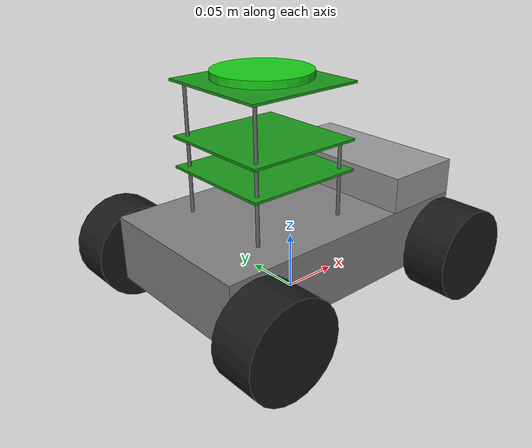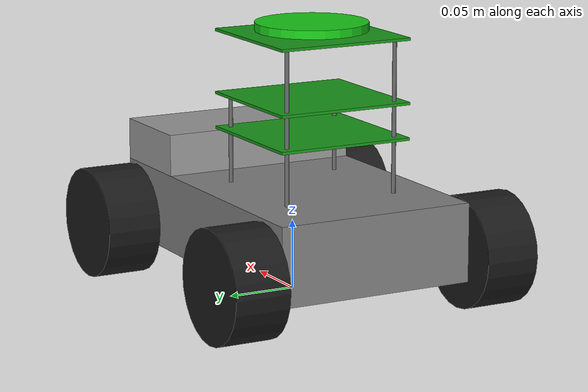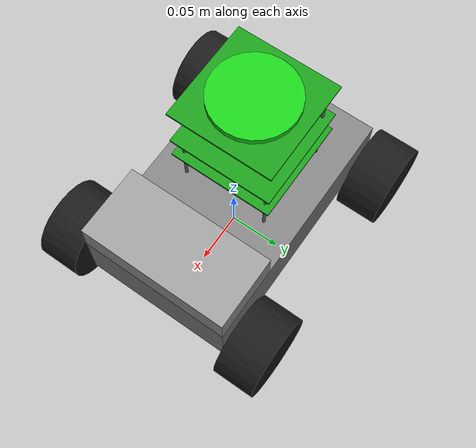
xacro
<?xml version="1.0"?>
<robot xmlns:xacro="http://www.ros.org/wiki/xacro" name="volt_runner_mecanum">

  <!-- ===== includes ===== -->
  <xacro:include filename="$(find volt_runner_description)/urdf/properties/mecanum_properties.urdf.xacro"/>
  <xacro:include filename="$(find volt_runner_description)/urdf/mech/base.urdf.xacro"/>
  <xacro:include filename="$(find volt_runner_description)/urdf/mech/wheel_isaac.urdf.xacro"/>
  <xacro:include filename="$(find volt_runner_description)/urdf/sensors/sender.urdf.xacro"/>

  <!-- ====== 전면 박스 ====== -->
  <xacro:property name="front_box_len" value="0.07"/>
  <xacro:property name="front_box_wid" value="0.145"/>
  <xacro:property name="front_box_hei" value="0.03"/>
  <xacro:property name="front_box_cx"  value="${ base_length/2.0 - front_box_len/2.0 }"/>
  <xacro:property name="front_box_cz"  value="${ base_height/2.0 + front_box_hei/2.0 }"/>

  <joint name="front_box_joint" type="fixed">
    <parent link="base_link"/>
    <child link="front_box_link"/>
    <origin xyz="${front_box_cx} 0 ${front_box_cz}" rpy="0 0 0"/>
  </joint>

  <link name="front_box_link">
    <visual>
      <geometry>
        <box size="${front_box_len} ${front_box_wid} ${front_box_hei}"/>
      </geometry>
      <material name="FrontBoxGrey">
        <color rgba="0.6 0.6 0.6 1"/>
      </material>
    </visual>
    <inertial>
      <mass value="0.1"/>
      <inertia ixx="0.001" ixy="0" ixz="0"
               iyy="0.001" iyz="0" izz="0.001"/>
    </inertial>
  </link>

  <!-- ====== 바디 / 휠 ====== -->
  <xacro:base
    length="${base_length}"
    width="${base_width}"
    height="${base_height}"
    mass="${base_mass}"
    wheel_radius="${wheel_radius}"
    mesh_file=""/>

  <xacro:mecanum_wheel name="front_left"  parent="base_link"
      radius="${wheel_radius}" width="${wheel_width}" mass="${wheel_mass}"
      pos_x="${front_wheel_x}" pos_y="${ wheel_center_y_abs}" pos_z="${base_height/2 - wheel_radius}"/>

  <xacro:mecanum_wheel name="front_right" parent="base_link"
      radius="${wheel_radius}" width="${wheel_width}" mass="${wheel_mass}"
      pos_x="${front_wheel_x}" pos_y="${-wheel_center_y_abs}" pos_z="${base_height/2 - wheel_radius}"/>

  <xacro:mecanum_wheel name="rear_left"   parent="base_link"
      radius="${wheel_radius}" width="${wheel_width}" mass="${wheel_mass}"
      pos_x="${rear_wheel_x}"  pos_y="${ wheel_center_y_abs}" pos_z="${base_height/2 - wheel_radius}"/>

  <xacro:mecanum_wheel name="rear_right"  parent="base_link"
      radius="${wheel_radius}" width="${wheel_width}" mass="${wheel_mass}"
      pos_x="${rear_wheel_x}"  pos_y="${-wheel_center_y_abs}" pos_z="${base_height/2 - wheel_radius}"/>

  <!-- ====== 3층 캐빈 스택 ====== -->
  <xacro:property name="table_len" value="0.10"/>
  <xacro:property name="table_wid" value="0.10"/>
  <xacro:property name="table_thk" value="0.002"/>
  <xacro:property name="leg_rad"   value="0.0015"/>

  <xacro:property name="h1" value="0.040"/>
  <xacro:property name="h2" value="0.025"/>
  <xacro:property name="h3" value="0.045"/>

  <xacro:property name="stack_x" value="${ -base_length/2.0 + 0.042 + table_len/2.0 }"/>
  <xacro:property name="stack_y" value="0.0"/>

  <xacro:macro name="mk_leg" params="name parent xyz len">
    <joint name="${name}_j" type="fixed">
      <parent link="${parent}"/>
      <child  link="${name}_l"/>
      <origin xyz="${xyz}" rpy="0 0 0"/>
    </joint>
    <link name="${name}_l">
      <visual>
        <geometry>
          <cylinder radius="${leg_rad}" length="${len}"/>
        </geometry>
        <material name="LegGray">
          <color rgba="0.4 0.4 0.4 1"/>
        </material>
      </visual>
      <inertial>
        <mass value="0.005"/>
        <inertia ixx="1e-5" ixy="0" ixz="0"
                 iyy="1e-5" iyz="0" izz="1e-5"/>
      </inertial>
    </link>
  </xacro:macro>

  <!-- ===== 1층 캐빈 ===== -->
  <joint name="table_1_joint" type="fixed">
    <parent link="base_link"/>
    <child  link="table_1_link"/>
    <origin xyz="${stack_x} ${stack_y} ${base_height/2.0 + h1 - table_thk/2.0}" rpy="0 0 0"/>
  </joint>

  <link name="table_1_link">
    <visual>
      <geometry>
        <box size="${table_len} ${table_wid} ${table_thk}"/>
      </geometry>
      <material name="TableGreen">
        <color rgba="0.1 0.6 0.1 1"/>
      </material>
    </visual>
    <inertial>
      <mass value="0.05"/>
      <inertia ixx="1e-4" ixy="0" ixz="0"
               iyy="1e-4" iyz="0" izz="1e-4"/>
    </inertial>
  </link>

  <xacro:property name="leg1_len" value="${h1 - table_thk}"/>
  <xacro:property name="leg1_z"   value="${base_height/2.0 + leg1_len/2.0}"/>
  <xacro:property name="ldx"      value="${table_len/2.0 - 0.008}"/>
  <xacro:property name="ldy"      value="${table_wid/2.0 - 0.008}"/>

  <xacro:mk_leg name="leg1_fl" parent="base_link"
                xyz="${stack_x + ldx} ${stack_y + ldy} ${leg1_z}"
                len="${leg1_len}"/>
  <xacro:mk_leg name="leg1_fr" parent="base_link"
                xyz="${stack_x + ldx} ${stack_y - ldy} ${leg1_z}"
                len="${leg1_len}"/>
  <xacro:mk_leg name="leg1_rl" parent="base_link"
                xyz="${stack_x - ldx} ${stack_y + ldy} ${leg1_z}"
                len="${leg1_len}"/>
  <xacro:mk_leg name="leg1_rr" parent="base_link"
                xyz="${stack_x - ldx} ${stack_y - ldy} ${leg1_z}"
                len="${leg1_len}"/>

  <!-- ===== 2층 캐빈 ===== -->
  <joint name="table_2_joint" type="fixed">
    <parent link="table_1_link"/>
    <child  link="table_2_link"/>
    <origin xyz="0 0 ${h2}" rpy="0 0 0"/>
  </joint>

  <link name="table_2_link">
    <visual>
      <geometry>
        <box size="${table_len} ${table_wid} ${table_thk}"/>
      </geometry>
      <material name="TableGreen"/>
    </visual>
    <inertial>
      <mass value="0.05"/>
      <inertia ixx="1e-4" ixy="0" ixz="0"
               iyy="1e-4" iyz="0" izz="1e-4"/>
      </inertial>
  </link>

  <xacro:property name="leg2_len" value="${h2 - table_thk}"/>

  <xacro:mk_leg name="leg2_fl" parent="table_1_link"
                xyz="${ldx} ${ldy} ${h2/2.0}"
                len="${leg2_len}"/>
  <xacro:mk_leg name="leg2_fr" parent="table_1_link"
                xyz="${ldx} ${-ldy} ${h2/2.0}"
                len="${leg2_len}"/>
  <xacro:mk_leg name="leg2_rl" parent="table_1_link"
                xyz="${-ldx} ${ldy} ${h2/2.0}"
                len="${leg2_len}"/>
  <xacro:mk_leg name="leg2_rr" parent="table_1_link"
                xyz="${-ldx} ${-ldy} ${h2/2.0}"
                len="${leg2_len}"/>

  <!-- ===== 3층 캐빈 ===== -->
  <joint name="table_3_joint" type="fixed">
    <parent link="table_2_link"/>
    <child  link="table_3_link"/>
    <origin xyz="0 0 ${h3}" rpy="0 0 0"/>
  </joint>

  <link name="table_3_link">
    <visual>
      <geometry>
        <box size="${table_len} ${table_wid} ${table_thk}"/>
      </geometry>
      <material name="TableGreen"/>
    </visual>
    <inertial>
      <mass value="0.05"/>
      <inertia ixx="1e-4" ixy="0" ixz="0"
               iyy="1e-4" iyz="0" izz="1e-4"/>
    </inertial>
  </link>

  <xacro:property name="leg3_len" value="${h3 - table_thk}"/>

  <xacro:mk_leg name="leg3_rl" parent="table_2_link"
                xyz="${-ldx} ${ldy} ${h3/2.0}"
                len="${leg3_len}"/>
  <xacro:mk_leg name="leg3_rr" parent="table_2_link"
                xyz="${-ldx} ${-ldy} ${h3/2.0}"
                len="${leg3_len}"/>

  <!-- ===== sender: 3층 캐빈 위 ===== -->
  <xacro:sender_sensor
      parent="table_3_link"
      prefix="rear_sender"
      xyz_origin="0 0 ${table_thk/2.0 + 0.005}"
      rpy_origin="0 0 0"/>

</robot>

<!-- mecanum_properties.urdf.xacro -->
<robot xmlns:xacro="http://www.ros.org/wiki/xacro">

  <xacro:property name="base_length" value="0.24"/>
  <xacro:property name="base_width"  value="0.145"/>
  <xacro:property name="base_height" value="0.056"/>
  <xacro:property name="base_mass"   value="6.0"/>

  <xacro:property name="wheel_radius" value="0.04"/>
  <xacro:property name="wheel_width"  value="0.04"/>
  <xacro:property name="wheel_mass"   value="0.3"/>

  <xacro:property name="wheel_gap" value="0.004"/>
  <xacro:property name="base_link_z" value="${wheel_radius + base_height/2.0}"/>
  <xacro:property name="wheel_center_y_abs" value="${base_width/2.0 + wheel_gap + wheel_width/2.0}"/>
  <xacro:property name="front_wheel_x" value="${ base_length/2.0 - 0.02 }"/>
  <xacro:property name="rear_wheel_x"  value="${-base_length/2.0 + 0.02 }"/>
  <xacro:property name="wheel_base" value="${front_wheel_x - rear_wheel_x}"/>

  <xacro:property name="base_mesh_file"  value=""/>
  <xacro:property name="wheel_mesh_file" value=""/>

  <xacro:property name="platform_length" value="0.20"/>
  <xacro:property name="platform_width"  value="0.12"/>
  <xacro:property name="platform_thickness" value="0.01"/>

  <xacro:property name="platform_center_z" value="0.07"/>

  <xacro:property name="laser_frame" value="base_scan"/>
  <xacro:property name="laser_topic" value="/scan"/>
  <xacro:property name="laser_rate"  value="20"/>

</robot>

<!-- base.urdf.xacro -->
<robot xmlns:xacro="http://ros.org/wiki/xacro">
  <!-- base 박스: 총 높이 = 2*wheel_radius 가 되도록 자동 오프셋 -->
  <xacro:macro name="base"
               params="length width height mass wheel_radius mesh_file:=''">

    <link name="base_footprint"/>

    <link name="base_link">
      <visual>
        <origin xyz="0 0 0" rpy="0 0 0"/>
        <geometry>
          <xacro:if value="${mesh_file == ''}">
            <box size="${length} ${width} ${height}"/>
          </xacro:if>
          <xacro:unless value="${mesh_file == ''}">
            <mesh filename="${mesh_file}" scale="1 1 1"/>
          </xacro:unless>
        </geometry>
        <material name="grey"><color rgba="0.5 0.5 0.5 1"/></material>
      </visual>

      <collision>
        <origin xyz="0 0 0" rpy="0 0 0"/>
        <geometry><box size="${length} ${width} ${height}"/></geometry>
      </collision>

      <inertial>
        <origin xyz="0 0 0" rpy="0 0 0"/>
        <mass value="${mass}"/>
        <inertia
          ixx="${(mass/12.0) * (width*width + height*height)}"
          ixy="0" ixz="0"
          iyy="${(mass/12.0) * (length*length + height*height)}"
          iyz="0"
          izz="${(mass/12.0) * (length*length + width*width)}"/>
      </inertial>
    </link>

    <!-- 중심 높이 = 2R - H/2  → 바닥 = 2R - H, 윗면 = 2R -->
    <joint name="base_to_footprint" type="fixed">
      <parent link="base_footprint"/>
      <child  link="base_link"/>
      <origin xyz="0 0 ${2*wheel_radius - height/2.0}" rpy="0 0 0"/>
    </joint>
  </xacro:macro>
</robot>

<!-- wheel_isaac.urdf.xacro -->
<robot xmlns:xacro="http://ros.org/wiki/xacro" xmlns:gz="http://gazebosim.org/schema">
  <xacro:macro name="mecanum_wheel"
               params="name parent:=base_link radius:=0.04 width:=0.04 mass:=0.3
                       pos_x:=0.0 pos_y:=0.0 pos_z:=${radius} mesh_file:=''">

    <link name="${name}_wheel">
      <visual>
        <origin xyz="0 0 0" rpy="1.57079632679 0 0"/>
        <geometry>
          <xacro:if value="${mesh_file == ''}">
            <cylinder radius="${radius}" length="${width}"/>
          </xacro:if>
          <xacro:unless value="${mesh_file == ''}">
            <mesh filename="${mesh_file}" scale="1 1 1"/>
          </xacro:unless>
        </geometry>
        <material name="${name}_rubber"><color rgba="0.1 0.1 0.1 1"/></material>
      </visual>

      <collision>
        <origin xyz="0 0 0" rpy="1.57079632679 0 0"/>
        <geometry><cylinder radius="${radius}" length="${width}"/></geometry>

        </collision>

      <inertial>
        <origin xyz="0 0 0" rpy="0 0 0"/>
        <mass value="${mass}"/>
        <inertia
          ixx="${0.5*mass*radius*radius}"
          ixy="0" ixz="0"
          iyy="${(1.0/12.0)*mass*(3*radius*radius + width*width)}"
          iyz="0"
          izz="${0.5*mass*radius*radius}"/>
      </inertial>
    </link>

    <joint name="${name}_wheel_joint" type="continuous">
      <parent link="${parent}"/>
      <child  link="${name}_wheel"/> <origin xyz="${pos_x} ${pos_y} ${pos_z}" rpy="0 0 0"/>
      <axis xyz="0 1 0"/>
      <limit effort="20.0" velocity="100.0"/>
      <dynamics damping="0.0" friction="0.0"/>
    </joint>
  </xacro:macro>
</robot>

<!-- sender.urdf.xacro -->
<robot xmlns:xacro="http://www.ros.org/wiki/xacro" name="sender_sensor">

  <material name="SensorGreen">
    <color rgba="0.1 0.8 0.1 1.0"/>
  </material>

  <xacro:macro name="sender_sensor" params="parent prefix xyz_origin rpy_origin">

    <joint name="${prefix}_joint" type="fixed">
      <parent link="${parent}"/>
      <child link="${prefix}_link"/>
      <origin xyz="${xyz_origin}" rpy="${rpy_origin}"/>
    </joint>

    <link name="${prefix}_link">
      <visual>
        <geometry>
          <cylinder radius="0.04" length="0.006"/>
        </geometry>
        <material name="SensorGreen"/>
      </visual>
      <collision>
        <geometry>
          <cylinder radius="0.04" length="0.006"/>
        </geometry>
      </collision>
      <inertial>
        <mass value="0.05"/>
        <inertia ixx="0.0001" ixy="0" ixz="0" iyy="0.0001" iyz="0" izz="0.0001"/>
      </inertial>
    </link>
  </xacro:macro>

</robot>
